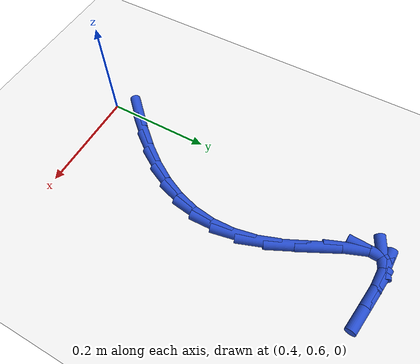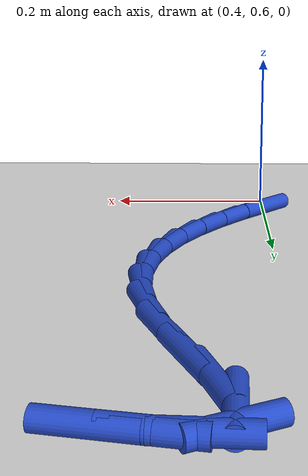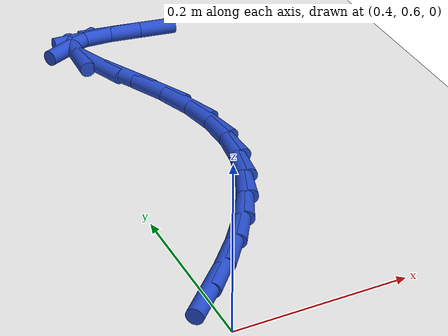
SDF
<sdf version="1.6">
 <world name="default">
  <model name="ground_plane">
   <static>1</static>
   <link name="link">
    <collision name="collision">
     <geometry><plane><normal>0 0 1</normal><size>100 100</size></plane></geometry>
     <surface><friction><ode><mu>100</mu><mu2>50</mu2></ode></friction></surface>
    </collision>
    <visual name="visual">
     <cast_shadows>0</cast_shadows>
     <geometry><plane><normal>0 0 1</normal><size>100 100</size></plane></geometry>
     <material>
      <script><uri>file://media/materials/scripts/gazebo.material</uri><name>Gazebo/WhiteGlow</name></script>
     </material>
    </visual>
   </link>
  </model>
  <model name="line">
   <link name="link_18">
    <pose>0.3994215532056832 0.6548693145613387 0.01 0 1.57 0.7861891197568008</pose>
    <collision name="collision">
     <geometry><cylinder><radius>0.01</radius><length>0.08</length></cylinder></geometry>
    </collision>
    <visual name="visual">
     <material>
      <script><name>Gazebo/Blue</name><uri>file://media/materials/scripts/gazebo.material</uri></script>
     </material>
     <geometry><cylinder><radius>0.01</radius><length>0.08</length></cylinder></geometry>
    </visual>
   </link>
   <link name="link_19">
    <pose>0.43152985902780555 0.6870284531379081 0.01 0 1.57 0.8434082346537224</pose>
    <collision name="collision">
     <geometry><cylinder><radius>0.01</radius><length>0.08</length></cylinder></geometry>
    </collision>
    <visual name="visual">
     <material>
      <script><name>Gazebo/Blue</name><uri>file://media/materials/scripts/gazebo.material</uri></script>
     </material>
     <geometry><cylinder><radius>0.01</radius><length>0.08</length></cylinder></geometry>
    </visual>
   </link>
   <link name="link_20">
    <pose>0.4608053111486691 0.7199139146250614 0.01 0 1.57 0.9190000260879077</pose>
    <collision name="collision">
     <geometry><cylinder><radius>0.01</radius><length>0.08</length></cylinder></geometry>
    </collision>
    <visual name="visual">
     <material>
      <script><name>Gazebo/Blue</name><uri>file://media/materials/scripts/gazebo.material</uri></script>
     </material>
     <geometry><cylinder><radius>0.01</radius><length>0.08</length></cylinder></geometry>
    </visual>
   </link>
   <link name="link_21">
    <pose>0.48660604305568045 0.7537268749972319 0.01 0 1.57 1.0153804073015564</pose>
    <collision name="collision">
     <geometry><cylinder><radius>0.01</radius><length>0.08</length></cylinder></geometry>
    </collision>
    <visual name="visual">
     <material>
      <script><name>Gazebo/Blue</name><uri>file://media/materials/scripts/gazebo.material</uri></script>
     </material>
     <geometry><cylinder><radius>0.01</radius><length>0.08</length></cylinder></geometry>
    </visual>
   </link>
   <link name="link_22">
    <pose>0.5082901882362464 0.7886685102288522 0.01 0 1.57 1.1341918419299764</pose>
    <collision name="collision">
     <geometry><cylinder><radius>0.01</radius><length>0.08</length></cylinder></geometry>
    </collision>
    <visual name="visual">
     <material>
      <script><name>Gazebo/Blue</name><uri>file://media/materials/scripts/gazebo.material</uri></script>
     </material>
     <geometry><cylinder><radius>0.01</radius><length>0.08</length></cylinder></geometry>
    </visual>
   </link>
   <link name="link_23">
    <pose>0.5252158801777738 0.8249399962943555 0.01 0 1.57 1.2748650645888</pose>
    <collision name="collision">
     <geometry><cylinder><radius>0.01</radius><length>0.08</length></cylinder></geometry>
    </collision>
    <visual name="visual">
     <material>
      <script><name>Gazebo/Blue</name><uri>file://media/materials/scripts/gazebo.material</uri></script>
     </material>
     <geometry><cylinder><radius>0.01</radius><length>0.08</length></cylinder></geometry>
    </visual>
   </link>
   <link name="link_24">
    <pose>0.5367412523676696 0.8627425091681747 0.01 0 1.57 1.4329825493292807</pose>
    <collision name="collision">
     <geometry><cylinder><radius>0.01</radius><length>0.08</length></cylinder></geometry>
    </collision>
    <visual name="visual">
     <material>
      <script><name>Gazebo/Blue</name><uri>file://media/materials/scripts/gazebo.material</uri></script>
     </material>
     <geometry><cylinder><radius>0.01</radius><length>0.08</length></cylinder></geometry>
    </visual>
   </link>
   <link name="link_25">
    <pose>0.5422244382933404 0.9022772248247433 0.01 0 1.57 -1.541845603366805</pose>
    <collision name="collision">
     <geometry><cylinder><radius>0.01</radius><length>0.08</length></cylinder></geometry>
    </collision>
    <visual name="visual">
     <material>
      <script><name>Gazebo/Blue</name><uri>file://media/materials/scripts/gazebo.material</uri></script>
     </material>
     <geometry><cylinder><radius>0.01</radius><length>0.08</length></cylinder></geometry>
    </visual>
   </link>
   <link name="link_26">
    <pose>0.541023571442193 0.9437453192384933 0.01 0 1.57 -1.377676887726726</pose>
    <collision name="collision">
     <geometry><cylinder><radius>0.01</radius><length>0.08</length></cylinder></geometry>
    </collision>
    <visual name="visual">
     <material>
      <script><name>Gazebo/Blue</name><uri>file://media/materials/scripts/gazebo.material</uri></script>
     </material>
     <geometry><cylinder><radius>0.01</radius><length>0.08</length></cylinder></geometry>
    </visual>
   </link>
   <link name="link_27">
    <pose>0.5324967853016342 0.9873479683838582 0.01 0 1.57 -1.2265032268384348</pose>
    <collision name="collision">
     <geometry><cylinder><radius>0.01</radius><length>0.08</length></cylinder></geometry>
    </collision>
    <visual name="visual">
     <material>
      <script><name>Gazebo/Blue</name><uri>file://media/materials/scripts/gazebo.material</uri></script>
     </material>
     <geometry><cylinder><radius>0.01</radius><length>0.08</length></cylinder></geometry>
    </visual>
   </link>
   <link name="link_28">
    <pose>0.5160306476102455 1.0332690683000556 0.01 0 1.57 -1.1244846671152116</pose>
    <collision name="collision">
     <geometry><cylinder><radius>0.01</radius><length>0.08</length></cylinder></geometry>
    </collision>
    <visual name="visual">
     <material>
      <script><name>Gazebo/Blue</name><uri>file://media/materials/scripts/gazebo.material</uri></script>
     </material>
     <geometry><cylinder><radius>0.01</radius><length>0.08</length></cylinder></geometry>
    </visual>
   </link>
   <link name="link_29">
    <pose>0.49361694083242313 1.0801092856523826 0.01 0 1.57 -1.1081911090037806</pose>
    <collision name="collision">
     <geometry><cylinder><radius>0.01</radius><length>0.08</length></cylinder></geometry>
    </collision>
    <visual name="visual">
     <material>
      <script><name>Gazebo/Blue</name><uri>file://media/materials/scripts/gazebo.material</uri></script>
     </material>
     <geometry><cylinder><radius>0.01</radius><length>0.08</length></cylinder></geometry>
    </visual>
   </link>
   <link name="link_30">
    <pose>0.47191054218108175 1.1236354521419556 0.01 0 1.57 -1.2003290559949678</pose>
    <collision name="collision">
     <geometry><cylinder><radius>0.01</radius><length>0.08</length></cylinder></geometry>
    </collision>
    <visual name="visual">
     <material>
      <script><name>Gazebo/Blue</name><uri>file://media/materials/scripts/gazebo.material</uri></script>
     </material>
     <geometry><cylinder><radius>0.01</radius><length>0.08</length></cylinder></geometry>
    </visual>
   </link>
   <link name="link_31">
    <pose>0.4580505939184414 1.1593201040925327 0.01 0 1.57 1.5233392924097766</pose>
    <collision name="collision">
     <geometry><cylinder><radius>0.01</radius><length>0.08</length></cylinder></geometry>
    </collision>
    <visual name="visual">
     <material>
      <script><name>Gazebo/Blue</name><uri>file://media/materials/scripts/gazebo.material</uri></script>
     </material>
     <geometry><cylinder><radius>0.01</radius><length>0.08</length></cylinder></geometry>
    </visual>
   </link>
   <link name="link_32">
    <pose>0.45915857684002037 1.1826496488551725 0.01 0 1.57 0.4292926324782675</pose>
    <collision name="collision">
     <geometry><cylinder><radius>0.01</radius><length>0.08</length></cylinder></geometry>
    </collision>
    <visual name="visual">
     <material>
      <script><name>Gazebo/Blue</name><uri>file://media/materials/scripts/gazebo.material</uri></script>
     </material>
     <geometry><cylinder><radius>0.01</radius><length>0.08</length></cylinder></geometry>
    </visual>
   </link>
   <link name="link_33">
    <pose>0.47901114767781816 1.1917374639339968 0.01 0 1.57 -0.037774600823491385</pose>
    <collision name="collision">
     <geometry><cylinder><radius>0.01</radius><length>0.08</length></cylinder></geometry>
    </collision>
    <visual name="visual">
     <material>
      <script><name>Gazebo/Blue</name><uri>file://media/materials/scripts/gazebo.material</uri></script>
     </material>
     <geometry><cylinder><radius>0.01</radius><length>0.08</length></cylinder></geometry>
    </visual>
   </link>
   <link name="link_34">
    <pose>0.5141094330994319 1.190411009237462 0.01 0 1.57 -0.15483144776434213</pose>
    <collision name="collision">
     <geometry><cylinder><radius>0.01</radius><length>0.08</length></cylinder></geometry>
    </collision>
    <visual name="visual">
     <material>
      <script><name>Gazebo/Blue</name><uri>file://media/materials/scripts/gazebo.material</uri></script>
     </material>
     <geometry><cylinder><radius>0.01</radius><length>0.08</length></cylinder></geometry>
    </visual>
   </link>
   <link name="link_35">
    <pose>0.559998509025957 1.1832486113050262 0.01 0 1.57 -0.15985035755464888</pose>
    <collision name="collision">
     <geometry><cylinder><radius>0.01</radius><length>0.08</length></cylinder></geometry>
    </collision>
    <visual name="visual">
     <material>
      <script><name>Gazebo/Blue</name><uri>file://media/materials/scripts/gazebo.material</uri></script>
     </material>
     <geometry><cylinder><radius>0.01</radius><length>0.08</length></cylinder></geometry>
    </visual>
   </link>
  </model>
 </world>
</sdf>
